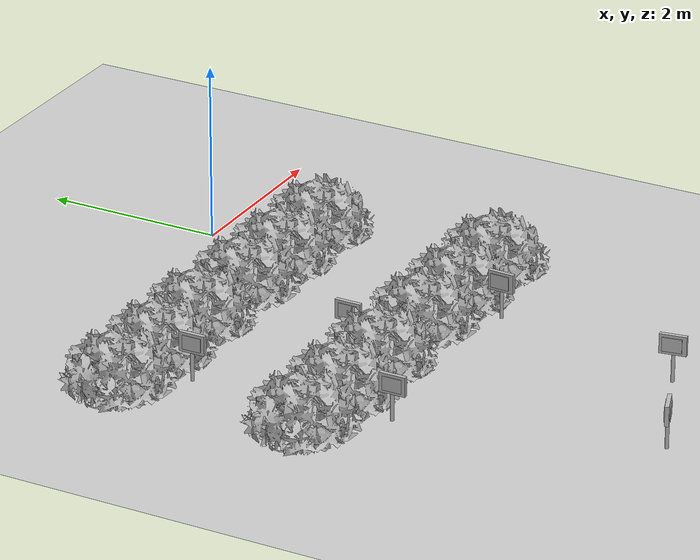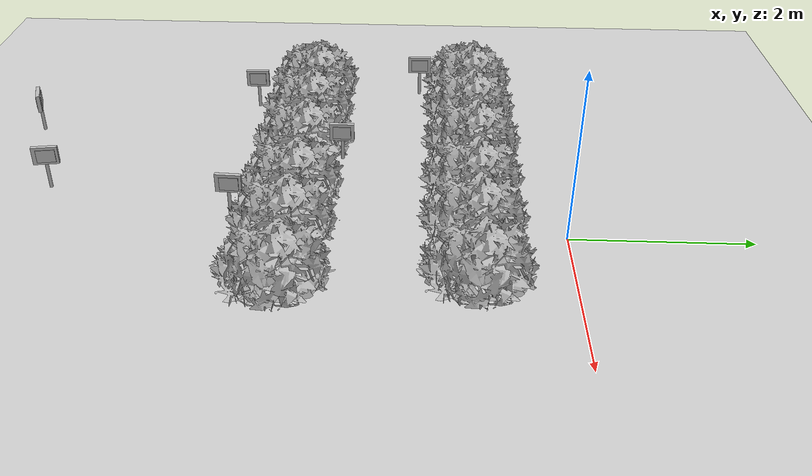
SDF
<sdf version="1.7">
 <world name="default">
  <model name="ground_plane">
   <static>1</static>
   <link name="link">
    <collision name="collision">
     <geometry><plane><normal>0 0 1</normal><size>100 100</size></plane></geometry>
     <surface>
      <contact><collide_bitmask>65535</collide_bitmask></contact>
      <friction><ode><mu>100</mu><mu2>50</mu2></ode></friction>
     </surface>
    </collision>
    <visual name="visual">
     <cast_shadows>0</cast_shadows>
     <geometry><plane><normal>0 0 1</normal><size>100 100</size></plane></geometry>
     <material>
      <script><uri>file://media/materials/scripts/gazebo.material</uri><name>Gazebo/Grey</name></script>
     </material>
    </visual>
   </link>
  </model>
  <model name="abbfre">
   <link name="link_0">
    <inertial>
     <mass>1</mass>
     <inertia>
      <ixx>0.166667</ixx>
      <ixy>0</ixy>
      <ixz>0</ixz>
      <iyy>0.166667</iyy>
      <iyz>0</iyz>
      <izz>0.166667</izz>
     </inertia>
    </inertial>
    <pose>0 0 -0 1.60917 -0 0</pose>
    <visual name="visual">
     <geometry><mesh><uri>model://abbfre/meshes/arbufres.obj</uri><scale>1 1 1</scale></mesh></geometry>
    </visual>
    <collision name="collision">
     <geometry><mesh><uri>model://abbfre/meshes/arbufres.obj</uri><scale>1 1 1</scale></mesh></geometry>
     <surface>
      <friction>
       <ode><mu>1</mu><mu2>1</mu2><fdir1>0 0 0</fdir1><slip1>0</slip1><slip2>0</slip2></ode>
       <torsional>
        <coefficient>1</coefficient>
        <patch_radius>0</patch_radius>
        <surface_radius>0</surface_radius>
        <use_patch_radius>1</use_patch_radius>
        <ode><slip>0</slip></ode>
       </torsional>
      </friction>
      <bounce><restitution_coefficient>0</restitution_coefficient><threshold>1e+06</threshold></bounce>
      <contact>
       <collide_without_contact>0</collide_without_contact>
       <collide_without_contact_bitmask>1</collide_without_contact_bitmask>
       <collide_bitmask>1</collide_bitmask>
       <ode>
        <soft_cfm>0</soft_cfm>
        <soft_erp>0.2</soft_erp>
        <kp>1e+13</kp>
        <kd>1</kd>
        <max_vel>0.01</max_vel>
        <min_depth>0</min_depth>
       </ode>
       <bullet>
        <split_impulse>1</split_impulse>
        <split_impulse_penetration_threshold>-0.01</split_impulse_penetration_threshold>
        <soft_cfm>0</soft_cfm>
        <soft_erp>0.2</soft_erp>
        <kp>1e+13</kp>
        <kd>1</kd>
       </bullet>
      </contact>
     </surface>
    </collision>
   </link>
   <static>1</static>
   <pose>-0.209599 -0.883769 0 0 -0 0</pose>
  </model>
  <model name="abbfre_4">
   <link name="link_0">
    <inertial>
     <mass>1</mass>
     <inertia>
      <ixx>0.166667</ixx>
      <ixy>0</ixy>
      <ixz>0</ixz>
      <iyy>0.166667</iyy>
      <iyz>0</iyz>
      <izz>0.166667</izz>
     </inertia>
    </inertial>
    <pose>0 0 -0 1.60917 -0 0</pose>
    <visual name="visual">
     <geometry><mesh><uri>model://abbfre/meshes/arbufres.obj</uri><scale>1 1 1</scale></mesh></geometry>
    </visual>
    <collision name="collision">
     <geometry><mesh><uri>model://abbfre/meshes/arbufres.obj</uri><scale>1 1 1</scale></mesh></geometry>
     <surface>
      <friction>
       <ode><mu>1</mu><mu2>1</mu2><fdir1>0 0 0</fdir1><slip1>0</slip1><slip2>0</slip2></ode>
       <torsional>
        <coefficient>1</coefficient>
        <patch_radius>0</patch_radius>
        <surface_radius>0</surface_radius>
        <use_patch_radius>1</use_patch_radius>
        <ode><slip>0</slip></ode>
       </torsional>
      </friction>
      <bounce><restitution_coefficient>0</restitution_coefficient><threshold>1e+06</threshold></bounce>
      <contact>
       <collide_without_contact>0</collide_without_contact>
       <collide_without_contact_bitmask>1</collide_without_contact_bitmask>
       <collide_bitmask>1</collide_bitmask>
       <ode>
        <soft_cfm>0</soft_cfm>
        <soft_erp>0.2</soft_erp>
        <kp>1e+13</kp>
        <kd>1</kd>
        <max_vel>0.01</max_vel>
        <min_depth>0</min_depth>
       </ode>
       <bullet>
        <split_impulse>1</split_impulse>
        <split_impulse_penetration_threshold>-0.01</split_impulse_penetration_threshold>
        <soft_cfm>0</soft_cfm>
        <soft_erp>0.2</soft_erp>
        <kp>1e+13</kp>
        <kd>1</kd>
       </bullet>
      </contact>
     </surface>
    </collision>
   </link>
   <static>1</static>
   <pose>-2.78374 -0.856745 0 0 -0 0</pose>
  </model>
  <model name="abbfre_9">
   <link name="link_0">
    <inertial>
     <mass>1</mass>
     <inertia>
      <ixx>0.166667</ixx>
      <ixy>0</ixy>
      <ixz>0</ixz>
      <iyy>0.166667</iyy>
      <iyz>0</iyz>
      <izz>0.166667</izz>
     </inertia>
    </inertial>
    <pose>0 0 -0 1.60917 -0 0</pose>
    <visual name="visual">
     <geometry><mesh><uri>model://abbfre/meshes/arbufres.obj</uri><scale>1 1 1</scale></mesh></geometry>
    </visual>
    <collision name="collision">
     <geometry><mesh><uri>model://abbfre/meshes/arbufres.obj</uri><scale>1 1 1</scale></mesh></geometry>
     <surface>
      <friction>
       <ode><mu>1</mu><mu2>1</mu2><fdir1>0 0 0</fdir1><slip1>0</slip1><slip2>0</slip2></ode>
       <torsional>
        <coefficient>1</coefficient>
        <patch_radius>0</patch_radius>
        <surface_radius>0</surface_radius>
        <use_patch_radius>1</use_patch_radius>
        <ode><slip>0</slip></ode>
       </torsional>
      </friction>
      <bounce><restitution_coefficient>0</restitution_coefficient><threshold>1e+06</threshold></bounce>
      <contact>
       <collide_without_contact>0</collide_without_contact>
       <collide_without_contact_bitmask>1</collide_without_contact_bitmask>
       <collide_bitmask>1</collide_bitmask>
       <ode>
        <soft_cfm>0</soft_cfm>
        <soft_erp>0.2</soft_erp>
        <kp>1e+13</kp>
        <kd>1</kd>
        <max_vel>0.01</max_vel>
        <min_depth>0</min_depth>
       </ode>
       <bullet>
        <split_impulse>1</split_impulse>
        <split_impulse_penetration_threshold>-0.01</split_impulse_penetration_threshold>
        <soft_cfm>0</soft_cfm>
        <soft_erp>0.2</soft_erp>
        <kp>1e+13</kp>
        <kd>1</kd>
       </bullet>
      </contact>
     </surface>
    </collision>
   </link>
   <static>1</static>
   <pose>-0.087861 -2.97501 0 0 -0 0</pose>
  </model>
  <model name="abbfre_10">
   <link name="link_0">
    <inertial>
     <mass>1</mass>
     <inertia>
      <ixx>0.166667</ixx>
      <ixy>0</ixy>
      <ixz>0</ixz>
      <iyy>0.166667</iyy>
      <iyz>0</iyz>
      <izz>0.166667</izz>
     </inertia>
    </inertial>
    <pose>0 0 -0 1.60917 -0 0</pose>
    <visual name="visual">
     <geometry><mesh><uri>model://abbfre/meshes/arbufres.obj</uri><scale>1 1 1</scale></mesh></geometry>
    </visual>
    <collision name="collision">
     <geometry><mesh><uri>model://abbfre/meshes/arbufres.obj</uri><scale>1 1 1</scale></mesh></geometry>
     <surface>
      <friction>
       <ode><mu>1</mu><mu2>1</mu2><fdir1>0 0 0</fdir1><slip1>0</slip1><slip2>0</slip2></ode>
       <torsional>
        <coefficient>1</coefficient>
        <patch_radius>0</patch_radius>
        <surface_radius>0</surface_radius>
        <use_patch_radius>1</use_patch_radius>
        <ode><slip>0</slip></ode>
       </torsional>
      </friction>
      <bounce><restitution_coefficient>0</restitution_coefficient><threshold>1e+06</threshold></bounce>
      <contact>
       <collide_without_contact>0</collide_without_contact>
       <collide_without_contact_bitmask>1</collide_without_contact_bitmask>
       <collide_bitmask>1</collide_bitmask>
       <ode>
        <soft_cfm>0</soft_cfm>
        <soft_erp>0.2</soft_erp>
        <kp>1e+13</kp>
        <kd>1</kd>
        <max_vel>0.01</max_vel>
        <min_depth>0</min_depth>
       </ode>
       <bullet>
        <split_impulse>1</split_impulse>
        <split_impulse_penetration_threshold>-0.01</split_impulse_penetration_threshold>
        <soft_cfm>0</soft_cfm>
        <soft_erp>0.2</soft_erp>
        <kp>1e+13</kp>
        <kd>1</kd>
       </bullet>
      </contact>
     </surface>
    </collision>
   </link>
   <static>1</static>
   <pose>-2.70737 -2.9693 0 0 -0 0</pose>
  </model>
  <model name="letrero_fresa">
   <link name="link_0">
    <inertial>
     <mass>0.00543151</mass>
     <inertia>
      <ixx>4.90351e-06</ixx>
      <ixy>0</ixy>
      <ixz>0</ixz>
      <iyy>4.90351e-06</iyy>
      <iyz>0</iyz>
      <izz>1.12837e-07</izz>
     </inertia>
    </inertial>
    <pose>0.002372 -0.000902 -0.178803 0 -0 0</pose>
    <visual name="visual">
     <geometry><cylinder><radius>0.0203836</radius><length>0.327243</length></cylinder></geometry>
     <material>
      <lighting>1</lighting>
      <script>
       <uri>model://letrero_fresa/madera/scripts</uri>
       <uri>model://letrero_fresa/madera/textures</uri>
       <name>textur/madera</name>
      </script>
      <shader type="pixel"/>
      <emissive>0 0 0 1</emissive>
     </material>
    </visual>
    <collision name="collision">
     <geometry><cylinder><radius>0.020384</radius><length>0.327243</length></cylinder></geometry>
     <surface>
      <friction>
       <ode><mu>1</mu><mu2>1</mu2><fdir1>0 0 0</fdir1><slip1>0</slip1><slip2>0</slip2></ode>
       <torsional>
        <coefficient>1</coefficient>
        <patch_radius>0</patch_radius>
        <surface_radius>0</surface_radius>
        <use_patch_radius>1</use_patch_radius>
        <ode><slip>0</slip></ode>
       </torsional>
      </friction>
      <bounce><restitution_coefficient>0</restitution_coefficient><threshold>1e+06</threshold></bounce>
      <contact>
       <collide_without_contact>0</collide_without_contact>
       <collide_without_contact_bitmask>1</collide_without_contact_bitmask>
       <collide_bitmask>1</collide_bitmask>
       <ode>
        <soft_cfm>0</soft_cfm>
        <soft_erp>0.2</soft_erp>
        <kp>1e+13</kp>
        <kd>1</kd>
        <max_vel>0.01</max_vel>
        <min_depth>0</min_depth>
       </ode>
       <bullet>
        <split_impulse>1</split_impulse>
        <split_impulse_penetration_threshold>-0.01</split_impulse_penetration_threshold>
        <soft_cfm>0</soft_cfm>
        <soft_erp>0.2</soft_erp>
        <kp>1e+13</kp>
        <kd>1</kd>
       </bullet>
      </contact>
     </surface>
    </collision>
   </link>
   <link name="link_1">
    <inertial>
     <mass>0.00299633</mass>
     <inertia>
      <ixx>1.27855e-05</ixx>
      <ixy>0</ixy>
      <ixz>0</ixz>
      <iyy>3.42923e-05</iyy>
      <iyz>0</iyz>
      <izz>2.25402e-05</izz>
     </inertia>
    </inertial>
    <pose>-0.001685 -0.003559 0.089666 0 -0 0</pose>
    <visual name="visual">
     <geometry><box><size>0.296988 0.04549 0.221665</size></box></geometry>
     <material>
      <lighting>1</lighting>
      <script>
       <uri>model://letrero_fresa/madera/scripts</uri>
       <uri>model://letrero_fresa/madera/textures</uri>
       <name>textur/madera</name>
      </script>
      <shader type="pixel"/>
      <emissive>0 0 0 1</emissive>
     </material>
    </visual>
    <collision name="collision">
     <geometry><box><size>0.296988 0.04549 0.221665</size></box></geometry>
     <surface>
      <friction>
       <ode><mu>1</mu><mu2>1</mu2><fdir1>0 0 0</fdir1><slip1>0</slip1><slip2>0</slip2></ode>
       <torsional>
        <coefficient>1</coefficient>
        <patch_radius>0</patch_radius>
        <surface_radius>0</surface_radius>
        <use_patch_radius>1</use_patch_radius>
        <ode><slip>0</slip></ode>
       </torsional>
      </friction>
      <bounce><restitution_coefficient>0</restitution_coefficient><threshold>1e+06</threshold></bounce>
      <contact>
       <collide_without_contact>0</collide_without_contact>
       <collide_without_contact_bitmask>1</collide_without_contact_bitmask>
       <collide_bitmask>1</collide_bitmask>
       <ode>
        <soft_cfm>0</soft_cfm>
        <soft_erp>0.2</soft_erp>
        <kp>1e+13</kp>
        <kd>1</kd>
        <max_vel>0.01</max_vel>
        <min_depth>0</min_depth>
       </ode>
       <bullet>
        <split_impulse>1</split_impulse>
        <split_impulse_penetration_threshold>-0.01</split_impulse_penetration_threshold>
        <soft_cfm>0</soft_cfm>
        <soft_erp>0.2</soft_erp>
        <kp>1e+13</kp>
        <kd>1</kd>
       </bullet>
      </contact>
     </surface>
    </collision>
   </link>
   <link name="link_2">
    <inertial>
     <mass>0.00219695</mass>
     <inertia>
      <ixx>5.34209e-06</ixx>
      <ixy>0</ixy>
      <ixz>0</ixz>
      <iyy>1.31531e-05</iyy>
      <iyz>0</iyz>
      <izz>9.31738e-06</izz>
     </inertia>
    </inertial>
    <pose>-0.001275 -0.005928 0.089136 0 -0 0</pose>
    <visual name="visual">
     <geometry><box><size>0.216284 0.06414 0.15832</size></box></geometry>
     <material>
      <lighting>1</lighting>
      <script>
       <uri>model://letrero_fresa/materials/scripts</uri>
       <uri>model://letrero_fresa/materials/textures</uri>
       <name>textur/difre</name>
      </script>
      <shader type="pixel"/>
      <emissive>0 0 0 1</emissive>
     </material>
    </visual>
    <collision name="collision">
     <geometry><box><size>0.216284 0.06414 0.15832</size></box></geometry>
     <surface>
      <friction>
       <ode><mu>1</mu><mu2>1</mu2><fdir1>0 0 0</fdir1><slip1>0</slip1><slip2>0</slip2></ode>
       <torsional>
        <coefficient>1</coefficient>
        <patch_radius>0</patch_radius>
        <surface_radius>0</surface_radius>
        <use_patch_radius>1</use_patch_radius>
        <ode><slip>0</slip></ode>
       </torsional>
      </friction>
      <bounce><restitution_coefficient>0</restitution_coefficient><threshold>1e+06</threshold></bounce>
      <contact>
       <collide_without_contact>0</collide_without_contact>
       <collide_without_contact_bitmask>1</collide_without_contact_bitmask>
       <collide_bitmask>1</collide_bitmask>
       <ode>
        <soft_cfm>0</soft_cfm>
        <soft_erp>0.2</soft_erp>
        <kp>1e+13</kp>
        <kd>1</kd>
        <max_vel>0.01</max_vel>
        <min_depth>0</min_depth>
       </ode>
       <bullet>
        <split_impulse>1</split_impulse>
        <split_impulse_penetration_threshold>-0.01</split_impulse_penetration_threshold>
        <soft_cfm>0</soft_cfm>
        <soft_erp>0.2</soft_erp>
        <kp>1e+13</kp>
        <kd>1</kd>
       </bullet>
      </contact>
     </surface>
    </collision>
   </link>
   <joint name="link_0_JOINT_1" type="fixed">
    <parent>link_0</parent>
    <child>link_1</child>
    <physics>
     <ode><limit><cfm>0</cfm><erp>0.2</erp></limit><suspension><cfm>0</cfm><erp>0.2</erp></suspension></ode>
    </physics>
   </joint>
   <joint name="link_0_JOINT_2" type="fixed">
    <parent>link_0</parent>
    <child>link_2</child>
    <physics>
     <ode><limit><cfm>0</cfm><erp>0.2</erp></limit><suspension><cfm>0</cfm><erp>0.2</erp></suspension></ode>
    </physics>
   </joint>
   <static>1</static>
   <pose>-3.241 -1.63282 0.406811 0 -0 1.573</pose>
  </model>
  <model name="letrero_insecto">
   <link name="link_0">
    <inertial>
     <mass>0.00543151</mass>
     <inertia>
      <ixx>4.90351e-06</ixx>
      <ixy>0</ixy>
      <ixz>0</ixz>
      <iyy>4.90351e-06</iyy>
      <iyz>0</iyz>
      <izz>1.12837e-07</izz>
     </inertia>
    </inertial>
    <pose>0.002372 -0.000902 -0.178803 0 -0 0</pose>
    <visual name="visual">
     <geometry><cylinder><radius>0.0203836</radius><length>0.327243</length></cylinder></geometry>
     <material>
      <lighting>1</lighting>
      <script>
       <uri>model://letrero_insecto/madera/scripts</uri>
       <uri>model://letrero_insecto/madera/textures</uri>
       <name>textur/madera</name>
      </script>
      <shader type="pixel"/>
      <emissive>0 0 0 1</emissive>
     </material>
    </visual>
    <collision name="collision">
     <geometry><cylinder><radius>0.020384</radius><length>0.327243</length></cylinder></geometry>
     <surface>
      <friction>
       <ode><mu>1</mu><mu2>1</mu2><fdir1>0 0 0</fdir1><slip1>0</slip1><slip2>0</slip2></ode>
       <torsional>
        <coefficient>1</coefficient>
        <patch_radius>0</patch_radius>
        <surface_radius>0</surface_radius>
        <use_patch_radius>1</use_patch_radius>
        <ode><slip>0</slip></ode>
       </torsional>
      </friction>
      <bounce><restitution_coefficient>0</restitution_coefficient><threshold>1e+06</threshold></bounce>
      <contact>
       <collide_without_contact>0</collide_without_contact>
       <collide_without_contact_bitmask>1</collide_without_contact_bitmask>
       <collide_bitmask>1</collide_bitmask>
       <ode>
        <soft_cfm>0</soft_cfm>
        <soft_erp>0.2</soft_erp>
        <kp>1e+13</kp>
        <kd>1</kd>
        <max_vel>0.01</max_vel>
        <min_depth>0</min_depth>
       </ode>
       <bullet>
        <split_impulse>1</split_impulse>
        <split_impulse_penetration_threshold>-0.01</split_impulse_penetration_threshold>
        <soft_cfm>0</soft_cfm>
        <soft_erp>0.2</soft_erp>
        <kp>1e+13</kp>
        <kd>1</kd>
       </bullet>
      </contact>
     </surface>
    </collision>
   </link>
   <link name="link_1">
    <inertial>
     <mass>0.00299633</mass>
     <inertia>
      <ixx>1.27855e-05</ixx>
      <ixy>0</ixy>
      <ixz>0</ixz>
      <iyy>3.42923e-05</iyy>
      <iyz>0</iyz>
      <izz>2.25402e-05</izz>
     </inertia>
    </inertial>
    <pose>-0.001685 -0.003559 0.089666 0 -0 0</pose>
    <visual name="visual">
     <geometry><box><size>0.296988 0.04549 0.221665</size></box></geometry>
     <material>
      <lighting>1</lighting>
      <script>
       <uri>model://letrero_insecto/madera/scripts</uri>
       <uri>model://letrero_insecto/madera/textures</uri>
       <name>textur/madera</name>
      </script>
      <shader type="pixel"/>
      <emissive>0 0 0 1</emissive>
     </material>
    </visual>
    <collision name="collision">
     <geometry><box><size>0.296988 0.04549 0.221665</size></box></geometry>
     <surface>
      <friction>
       <ode><mu>1</mu><mu2>1</mu2><fdir1>0 0 0</fdir1><slip1>0</slip1><slip2>0</slip2></ode>
       <torsional>
        <coefficient>1</coefficient>
        <patch_radius>0</patch_radius>
        <surface_radius>0</surface_radius>
        <use_patch_radius>1</use_patch_radius>
        <ode><slip>0</slip></ode>
       </torsional>
      </friction>
      <bounce><restitution_coefficient>0</restitution_coefficient><threshold>1e+06</threshold></bounce>
      <contact>
       <collide_without_contact>0</collide_without_contact>
       <collide_without_contact_bitmask>1</collide_without_contact_bitmask>
       <collide_bitmask>1</collide_bitmask>
       <ode>
        <soft_cfm>0</soft_cfm>
        <soft_erp>0.2</soft_erp>
        <kp>1e+13</kp>
        <kd>1</kd>
        <max_vel>0.01</max_vel>
        <min_depth>0</min_depth>
       </ode>
       <bullet>
        <split_impulse>1</split_impulse>
        <split_impulse_penetration_threshold>-0.01</split_impulse_penetration_threshold>
        <soft_cfm>0</soft_cfm>
        <soft_erp>0.2</soft_erp>
        <kp>1e+13</kp>
        <kd>1</kd>
       </bullet>
      </contact>
     </surface>
    </collision>
   </link>
   <link name="link_2">
    <inertial>
     <mass>0.00219695</mass>
     <inertia>
      <ixx>5.34209e-06</ixx>
      <ixy>0</ixy>
      <ixz>0</ixz>
      <iyy>1.31531e-05</iyy>
      <iyz>0</iyz>
      <izz>9.31738e-06</izz>
     </inertia>
    </inertial>
    <pose>-0.001275 -0.005928 0.089136 0 -0 0</pose>
    <visual name="visual">
     <geometry><box><size>0.216284 0.06414 0.15832</size></box></geometry>
     <material>
      <lighting>1</lighting>
      <script>
       <uri>model://letrero_insecto/materials/scripts</uri>
       <uri>model://letrero_insecto/materials/textures</uri>
       <name>textur/insec</name>
      </script>
      <shader type="pixel"/>
      <emissive>0 0 0 1</emissive>
     </material>
    </visual>
    <collision name="collision">
     <geometry><box><size>0.216284 0.06414 0.15832</size></box></geometry>
     <surface>
      <friction>
       <ode><mu>1</mu><mu2>1</mu2><fdir1>0 0 0</fdir1><slip1>0</slip1><slip2>0</slip2></ode>
       <torsional>
        <coefficient>1</coefficient>
        <patch_radius>0</patch_radius>
        <surface_radius>0</surface_radius>
        <use_patch_radius>1</use_patch_radius>
        <ode><slip>0</slip></ode>
       </torsional>
      </friction>
      <bounce><restitution_coefficient>0</restitution_coefficient><threshold>1e+06</threshold></bounce>
      <contact>
       <collide_without_contact>0</collide_without_contact>
       <collide_without_contact_bitmask>1</collide_without_contact_bitmask>
       <collide_bitmask>1</collide_bitmask>
       <ode>
        <soft_cfm>0</soft_cfm>
        <soft_erp>0.2</soft_erp>
        <kp>1e+13</kp>
        <kd>1</kd>
        <max_vel>0.01</max_vel>
        <min_depth>0</min_depth>
       </ode>
       <bullet>
        <split_impulse>1</split_impulse>
        <split_impulse_penetration_threshold>-0.01</split_impulse_penetration_threshold>
        <soft_cfm>0</soft_cfm>
        <soft_erp>0.2</soft_erp>
        <kp>1e+13</kp>
        <kd>1</kd>
       </bullet>
      </contact>
     </surface>
    </collision>
   </link>
   <joint name="link_0_JOINT_1" type="fixed">
    <parent>link_0</parent>
    <child>link_1</child>
    <physics>
     <ode><limit><cfm>0</cfm><erp>0.2</erp></limit><suspension><cfm>0</cfm><erp>0.2</erp></suspension></ode>
    </physics>
   </joint>
   <joint name="link_0_JOINT_2" type="fixed">
    <parent>link_0</parent>
    <child>link_2</child>
    <physics>
     <ode><limit><cfm>0</cfm><erp>0.2</erp></limit><suspension><cfm>0</cfm><erp>0.2</erp></suspension></ode>
    </physics>
   </joint>
   <static>1</static>
   <pose>-1.58816 -2.55615 0.27684 0 -0 1.56189</pose>
  </model>
  <model name="letrero_chocho_8">
   <link name="link_0">
    <inertial>
     <mass>0.0543151</mass>
     <inertia>
      <ixx>4.90351e-06</ixx>
      <ixy>0</ixy>
      <ixz>0</ixz>
      <iyy>4.90351e-06</iyy>
      <iyz>0</iyz>
      <izz>1.12837e-07</izz>
     </inertia>
    </inertial>
    <pose>0.002515 0.005109 0.153562 0 -0 0</pose>
    <visual name="visual">
     <geometry><cylinder><radius>0.0203836</radius><length>0.327243</length></cylinder></geometry>
     <material>
      <lighting>1</lighting>
      <script>
       <uri>model://letrero_chocho/madera/scripts</uri>
       <uri>model://letrero_chocho/madera/textures</uri>
       <name>textur/madera</name>
      </script>
      <shader type="pixel"/>
      <emissive>0 0 0 1</emissive>
     </material>
    </visual>
    <collision name="collision">
     <geometry><cylinder><radius>0.020384</radius><length>0.327243</length></cylinder></geometry>
     <surface>
      <friction>
       <ode><mu>1</mu><mu2>1</mu2><fdir1>0 0 0</fdir1><slip1>0</slip1><slip2>0</slip2></ode>
       <torsional>
        <coefficient>1</coefficient>
        <patch_radius>0</patch_radius>
        <surface_radius>0</surface_radius>
        <use_patch_radius>1</use_patch_radius>
        <ode><slip>0</slip></ode>
       </torsional>
      </friction>
      <bounce><restitution_coefficient>0</restitution_coefficient><threshold>1e+06</threshold></bounce>
      <contact>
       <collide_without_contact>0</collide_without_contact>
       <collide_without_contact_bitmask>1</collide_without_contact_bitmask>
       <collide_bitmask>1</collide_bitmask>
       <ode>
        <soft_cfm>0</soft_cfm>
        <soft_erp>0.2</soft_erp>
        <kp>1e+13</kp>
        <kd>1</kd>
        <max_vel>0.01</max_vel>
        <min_depth>0</min_depth>
       </ode>
       <bullet>
        <split_impulse>1</split_impulse>
        <split_impulse_penetration_threshold>-0.01</split_impulse_penetration_threshold>
        <soft_cfm>0</soft_cfm>
        <soft_erp>0.2</soft_erp>
        <kp>1e+13</kp>
        <kd>1</kd>
       </bullet>
      </contact>
     </surface>
    </collision>
   </link>
   <link name="link_1">
    <inertial>
     <mass>0.00299633</mass>
     <inertia>
      <ixx>1.27855e-05</ixx>
      <ixy>0</ixy>
      <ixz>0</ixz>
      <iyy>3.42923e-05</iyy>
      <iyz>0</iyz>
      <izz>2.25402e-05</izz>
     </inertia>
    </inertial>
    <pose>-0.001542 0.002452 0.422031 0 -0 0</pose>
    <visual name="visual">
     <geometry><box><size>0.296988 0.04549 0.221665</size></box></geometry>
     <material>
      <lighting>1</lighting>
      <script>
       <uri>model://letrero_chocho/madera/scripts</uri>
       <uri>model://letrero_chocho/madera/textures</uri>
       <name>textur/madera</name>
      </script>
      <shader type="pixel"/>
      <emissive>0 0 0 1</emissive>
     </material>
    </visual>
    <collision name="collision">
     <geometry><box><size>0.296988 0.04549 0.221665</size></box></geometry>
     <surface>
      <friction>
       <ode><mu>1</mu><mu2>1</mu2><fdir1>0 0 0</fdir1><slip1>0</slip1><slip2>0</slip2></ode>
       <torsional>
        <coefficient>1</coefficient>
        <patch_radius>0</patch_radius>
        <surface_radius>0</surface_radius>
        <use_patch_radius>1</use_patch_radius>
        <ode><slip>0</slip></ode>
       </torsional>
      </friction>
      <bounce><restitution_coefficient>0</restitution_coefficient><threshold>1e+06</threshold></bounce>
      <contact>
       <collide_without_contact>0</collide_without_contact>
       <collide_without_contact_bitmask>1</collide_without_contact_bitmask>
       <collide_bitmask>1</collide_bitmask>
       <ode>
        <soft_cfm>0</soft_cfm>
        <soft_erp>0.2</soft_erp>
        <kp>1e+13</kp>
        <kd>1</kd>
        <max_vel>0.01</max_vel>
        <min_depth>0</min_depth>
       </ode>
       <bullet>
        <split_impulse>1</split_impulse>
        <split_impulse_penetration_threshold>-0.01</split_impulse_penetration_threshold>
        <soft_cfm>0</soft_cfm>
        <soft_erp>0.2</soft_erp>
        <kp>1e+13</kp>
        <kd>1</kd>
       </bullet>
      </contact>
     </surface>
    </collision>
   </link>
   <link name="link_2">
    <inertial>
     <mass>0.00173577</mass>
     <inertia>
      <ixx>4.23206e-06</ixx>
      <ixy>0</ixy>
      <ixz>0</ixz>
      <iyy>1.03921e-05</iyy>
      <iyz>0</iyz>
      <izz>7.37287e-06</izz>
     </inertia>
    </inertial>
    <pose>-0.010225 0.002657 0.421501 0 -0 0</pose>
    <visual name="visual">
     <geometry><box><size>0.216284 0.064749 0.15832</size></box></geometry>
     <material>
      <lighting>1</lighting>
      <script>
       <uri>model://letrero_chocho/materials/scripts</uri>
       <uri>model://letrero_chocho/materials/textures</uri>
       <name>textur/cho</name>
      </script>
      <shader type="pixel"/>
      <emissive>0 0 0 1</emissive>
     </material>
    </visual>
    <collision name="collision">
     <geometry><box><size>0.216284 0.064749 0.15832</size></box></geometry>
     <surface>
      <friction>
       <ode><mu>1</mu><mu2>1</mu2><fdir1>0 0 0</fdir1><slip1>0</slip1><slip2>0</slip2></ode>
       <torsional>
        <coefficient>1</coefficient>
        <patch_radius>0</patch_radius>
        <surface_radius>0</surface_radius>
        <use_patch_radius>1</use_patch_radius>
        <ode><slip>0</slip></ode>
       </torsional>
      </friction>
      <bounce><restitution_coefficient>0</restitution_coefficient><threshold>1e+06</threshold></bounce>
      <contact>
       <collide_without_contact>0</collide_without_contact>
       <collide_without_contact_bitmask>1</collide_without_contact_bitmask>
       <collide_bitmask>1</collide_bitmask>
       <ode>
        <soft_cfm>0</soft_cfm>
        <soft_erp>0.2</soft_erp>
        <kp>1e+13</kp>
        <kd>1</kd>
        <max_vel>0.01</max_vel>
        <min_depth>0</min_depth>
       </ode>
       <bullet>
        <split_impulse>1</split_impulse>
        <split_impulse_penetration_threshold>-0.01</split_impulse_penetration_threshold>
        <soft_cfm>0</soft_cfm>
        <soft_erp>0.2</soft_erp>
        <kp>1e+13</kp>
        <kd>1</kd>
       </bullet>
      </contact>
     </surface>
    </collision>
   </link>
   <joint name="link_0_JOINT_1" type="fixed">
    <parent>link_0</parent>
    <child>link_1</child>
    <physics>
     <ode><limit><cfm>0</cfm><erp>0.2</erp></limit><suspension><cfm>0</cfm><erp>0.2</erp></suspension></ode>
    </physics>
   </joint>
   <joint name="link_0_JOINT_2" type="fixed">
    <parent>link_0</parent>
    <child>link_2</child>
    <physics>
     <ode><limit><cfm>0</cfm><erp>0.2</erp></limit><suspension><cfm>0</cfm><erp>0.2</erp></suspension></ode>
    </physics>
   </joint>
   <static>1</static>
   <pose>-0.786879 -5.92165 0 0 0 -1.4138</pose>
  </model>
  <model name="letrero_riego_II_7">
   <link name="link_0">
    <inertial>
     <mass>0.0543151</mass>
     <inertia>
      <ixx>4.90351e-06</ixx>
      <ixy>0</ixy>
      <ixz>0</ixz>
      <iyy>4.90351e-06</iyy>
      <iyz>0</iyz>
      <izz>1.12837e-07</izz>
     </inertia>
    </inertial>
    <pose>0.002515 0.005109 0.153562 0 -0 0</pose>
    <visual name="visual">
     <geometry><cylinder><radius>0.0203836</radius><length>0.327243</length></cylinder></geometry>
     <material>
      <lighting>1</lighting>
      <script>
       <uri>model://letrero_riego_II/madera/scripts</uri>
       <uri>model://letrero_riego_II/madera/textures</uri>
       <name>textur/madera</name>
      </script>
      <shader type="pixel"/>
      <emissive>0 0 0 1</emissive>
     </material>
    </visual>
    <collision name="collision">
     <geometry><cylinder><radius>0.020384</radius><length>0.327243</length></cylinder></geometry>
     <surface>
      <friction>
       <ode><mu>1</mu><mu2>1</mu2><fdir1>0 0 0</fdir1><slip1>0</slip1><slip2>0</slip2></ode>
       <torsional>
        <coefficient>1</coefficient>
        <patch_radius>0</patch_radius>
        <surface_radius>0</surface_radius>
        <use_patch_radius>1</use_patch_radius>
        <ode><slip>0</slip></ode>
       </torsional>
      </friction>
      <bounce><restitution_coefficient>0</restitution_coefficient><threshold>1e+06</threshold></bounce>
      <contact>
       <collide_without_contact>0</collide_without_contact>
       <collide_without_contact_bitmask>1</collide_without_contact_bitmask>
       <collide_bitmask>1</collide_bitmask>
       <ode>
        <soft_cfm>0</soft_cfm>
        <soft_erp>0.2</soft_erp>
        <kp>1e+13</kp>
        <kd>1</kd>
        <max_vel>0.01</max_vel>
        <min_depth>0</min_depth>
       </ode>
       <bullet>
        <split_impulse>1</split_impulse>
        <split_impulse_penetration_threshold>-0.01</split_impulse_penetration_threshold>
        <soft_cfm>0</soft_cfm>
        <soft_erp>0.2</soft_erp>
        <kp>1e+13</kp>
        <kd>1</kd>
       </bullet>
      </contact>
     </surface>
    </collision>
   </link>
   <link name="link_1">
    <inertial>
     <mass>0.00299633</mass>
     <inertia>
      <ixx>1.27855e-05</ixx>
      <ixy>0</ixy>
      <ixz>0</ixz>
      <iyy>3.42923e-05</iyy>
      <iyz>0</iyz>
      <izz>2.25402e-05</izz>
     </inertia>
    </inertial>
    <pose>-0.001542 0.002452 0.422031 0 -0 0</pose>
    <visual name="visual">
     <geometry><box><size>0.296988 0.04549 0.221665</size></box></geometry>
     <material>
      <lighting>1</lighting>
      <script>
       <uri>model://letrero_riego_II/madera/scripts</uri>
       <uri>model://letrero_riego_II/madera/textures</uri>
       <name>textur/madera</name>
      </script>
      <shader type="pixel"/>
      <emissive>0 0 0 1</emissive>
     </material>
    </visual>
    <collision name="collision">
     <geometry><box><size>0.296988 0.04549 0.221665</size></box></geometry>
     <surface>
      <friction>
       <ode><mu>1</mu><mu2>1</mu2><fdir1>0 0 0</fdir1><slip1>0</slip1><slip2>0</slip2></ode>
       <torsional>
        <coefficient>1</coefficient>
        <patch_radius>0</patch_radius>
        <surface_radius>0</surface_radius>
        <use_patch_radius>1</use_patch_radius>
        <ode><slip>0</slip></ode>
       </torsional>
      </friction>
      <bounce><restitution_coefficient>0</restitution_coefficient><threshold>1e+06</threshold></bounce>
      <contact>
       <collide_without_contact>0</collide_without_contact>
       <collide_without_contact_bitmask>1</collide_without_contact_bitmask>
       <collide_bitmask>1</collide_bitmask>
       <ode>
        <soft_cfm>0</soft_cfm>
        <soft_erp>0.2</soft_erp>
        <kp>1e+13</kp>
        <kd>1</kd>
        <max_vel>0.01</max_vel>
        <min_depth>0</min_depth>
       </ode>
       <bullet>
        <split_impulse>1</split_impulse>
        <split_impulse_penetration_threshold>-0.01</split_impulse_penetration_threshold>
        <soft_cfm>0</soft_cfm>
        <soft_erp>0.2</soft_erp>
        <kp>1e+13</kp>
        <kd>1</kd>
       </bullet>
      </contact>
     </surface>
    </collision>
   </link>
   <link name="link_2">
    <inertial>
     <mass>0.00173577</mass>
     <inertia>
      <ixx>4.23206e-06</ixx>
      <ixy>0</ixy>
      <ixz>0</ixz>
      <iyy>1.03921e-05</iyy>
      <iyz>0</iyz>
      <izz>7.37287e-06</izz>
     </inertia>
    </inertial>
    <pose>-0.010225 0.002657 0.421501 0 -0 0</pose>
    <visual name="visual">
     <geometry><box><size>0.216284 0.064749 0.15832</size></box></geometry>
     <material>
      <lighting>1</lighting>
      <script>
       <uri>model://letrero_riego_II/materials/scripts</uri>
       <uri>model://letrero_riego_II/materials/textures</uri>
       <name>textur/sisrie</name>
      </script>
      <shader type="pixel"/>
      <emissive>0 0 0 1</emissive>
     </material>
    </visual>
    <collision name="collision">
     <geometry><box><size>0.216284 0.064749 0.15832</size></box></geometry>
     <surface>
      <friction>
       <ode><mu>1</mu><mu2>1</mu2><fdir1>0 0 0</fdir1><slip1>0</slip1><slip2>0</slip2></ode>
       <torsional>
        <coefficient>1</coefficient>
        <patch_radius>0</patch_radius>
        <surface_radius>0</surface_radius>
        <use_patch_radius>1</use_patch_radius>
        <ode><slip>0</slip></ode>
       </torsional>
      </friction>
      <bounce><restitution_coefficient>0</restitution_coefficient><threshold>1e+06</threshold></bounce>
      <contact>
       <collide_without_contact>0</collide_without_contact>
       <collide_without_contact_bitmask>1</collide_without_contact_bitmask>
       <collide_bitmask>1</collide_bitmask>
       <ode>
        <soft_cfm>0</soft_cfm>
        <soft_erp>0.2</soft_erp>
        <kp>1e+13</kp>
        <kd>1</kd>
        <max_vel>0.01</max_vel>
        <min_depth>0</min_depth>
       </ode>
       <bullet>
        <split_impulse>1</split_impulse>
        <split_impulse_penetration_threshold>-0.01</split_impulse_penetration_threshold>
        <soft_cfm>0</soft_cfm>
        <soft_erp>0.2</soft_erp>
        <kp>1e+13</kp>
        <kd>1</kd>
       </bullet>
      </contact>
     </surface>
    </collision>
   </link>
   <joint name="link_0_JOINT_1" type="fixed">
    <parent>link_0</parent>
    <child>link_1</child>
    <physics>
     <ode><limit><cfm>0</cfm><erp>0.2</erp></limit><suspension><cfm>0</cfm><erp>0.2</erp></suspension></ode>
    </physics>
   </joint>
   <joint name="link_0_JOINT_2" type="fixed">
    <parent>link_0</parent>
    <child>link_2</child>
    <physics>
     <ode><limit><cfm>0</cfm><erp>0.2</erp></limit><suspension><cfm>0</cfm><erp>0.2</erp></suspension></ode>
    </physics>
   </joint>
   <static>1</static>
   <pose>-2.14115 -6.48982 0 0 -0 0.336304</pose>
  </model>
  <model name="letrero_pajaro_6">
   <link name="link_0">
    <inertial>
     <mass>0.0543151</mass>
     <inertia>
      <ixx>4.90351e-06</ixx>
      <ixy>0</ixy>
      <ixz>0</ixz>
      <iyy>4.90351e-06</iyy>
      <iyz>0</iyz>
      <izz>1.12837e-07</izz>
     </inertia>
    </inertial>
    <pose>0.002515 0.005109 0.153562 0 -0 0</pose>
    <visual name="visual">
     <geometry><cylinder><radius>0.0203836</radius><length>0.327243</length></cylinder></geometry>
     <material>
      <lighting>1</lighting>
      <script>
       <uri>model://letrero_pajaro/madera/scripts</uri>
       <uri>model://letrero_pajaro/madera/textures</uri>
       <name>textur/madera</name>
      </script>
      <shader type="pixel"/>
      <emissive>0 0 0 1</emissive>
     </material>
    </visual>
    <collision name="collision">
     <geometry><cylinder><radius>0.020384</radius><length>0.327243</length></cylinder></geometry>
     <surface>
      <friction>
       <ode><mu>1</mu><mu2>1</mu2><fdir1>0 0 0</fdir1><slip1>0</slip1><slip2>0</slip2></ode>
       <torsional>
        <coefficient>1</coefficient>
        <patch_radius>0</patch_radius>
        <surface_radius>0</surface_radius>
        <use_patch_radius>1</use_patch_radius>
        <ode><slip>0</slip></ode>
       </torsional>
      </friction>
      <bounce><restitution_coefficient>0</restitution_coefficient><threshold>1e+06</threshold></bounce>
      <contact>
       <collide_without_contact>0</collide_without_contact>
       <collide_without_contact_bitmask>1</collide_without_contact_bitmask>
       <collide_bitmask>1</collide_bitmask>
       <ode>
        <soft_cfm>0</soft_cfm>
        <soft_erp>0.2</soft_erp>
        <kp>1e+13</kp>
        <kd>1</kd>
        <max_vel>0.01</max_vel>
        <min_depth>0</min_depth>
       </ode>
       <bullet>
        <split_impulse>1</split_impulse>
        <split_impulse_penetration_threshold>-0.01</split_impulse_penetration_threshold>
        <soft_cfm>0</soft_cfm>
        <soft_erp>0.2</soft_erp>
        <kp>1e+13</kp>
        <kd>1</kd>
       </bullet>
      </contact>
     </surface>
    </collision>
   </link>
   <link name="link_1">
    <inertial>
     <mass>0.00299633</mass>
     <inertia>
      <ixx>1.27855e-05</ixx>
      <ixy>0</ixy>
      <ixz>0</ixz>
      <iyy>3.42923e-05</iyy>
      <iyz>0</iyz>
      <izz>2.25402e-05</izz>
     </inertia>
    </inertial>
    <pose>-0.001542 0.002452 0.422031 0 -0 0</pose>
    <visual name="visual">
     <geometry><box><size>0.296988 0.04549 0.221665</size></box></geometry>
     <material>
      <lighting>1</lighting>
      <script>
       <uri>model://letrero_pajaro/madera/scripts</uri>
       <uri>model://letrero_pajaro/madera/textures</uri>
       <name>textur/madera</name>
      </script>
      <shader type="pixel"/>
      <emissive>0 0 0 1</emissive>
     </material>
    </visual>
    <collision name="collision">
     <geometry><box><size>0.296988 0.04549 0.221665</size></box></geometry>
     <surface>
      <friction>
       <ode><mu>1</mu><mu2>1</mu2><fdir1>0 0 0</fdir1><slip1>0</slip1><slip2>0</slip2></ode>
       <torsional>
        <coefficient>1</coefficient>
        <patch_radius>0</patch_radius>
        <surface_radius>0</surface_radius>
        <use_patch_radius>1</use_patch_radius>
        <ode><slip>0</slip></ode>
       </torsional>
      </friction>
      <bounce><restitution_coefficient>0</restitution_coefficient><threshold>1e+06</threshold></bounce>
      <contact>
       <collide_without_contact>0</collide_without_contact>
       <collide_without_contact_bitmask>1</collide_without_contact_bitmask>
       <collide_bitmask>1</collide_bitmask>
       <ode>
        <soft_cfm>0</soft_cfm>
        <soft_erp>0.2</soft_erp>
        <kp>1e+13</kp>
        <kd>1</kd>
        <max_vel>0.01</max_vel>
        <min_depth>0</min_depth>
       </ode>
       <bullet>
        <split_impulse>1</split_impulse>
        <split_impulse_penetration_threshold>-0.01</split_impulse_penetration_threshold>
        <soft_cfm>0</soft_cfm>
        <soft_erp>0.2</soft_erp>
        <kp>1e+13</kp>
        <kd>1</kd>
       </bullet>
      </contact>
     </surface>
    </collision>
   </link>
   <link name="link_2">
    <inertial>
     <mass>0.00173577</mass>
     <inertia>
      <ixx>4.23206e-06</ixx>
      <ixy>0</ixy>
      <ixz>0</ixz>
      <iyy>1.03921e-05</iyy>
      <iyz>0</iyz>
      <izz>7.37287e-06</izz>
     </inertia>
    </inertial>
    <pose>-0.010225 0.002657 0.421501 0 -0 0</pose>
    <visual name="visual">
     <geometry><box><size>0.216284 0.064749 0.15832</size></box></geometry>
     <material>
      <lighting>1</lighting>
      <script>
       <uri>model://letrero_pajaro/materials/scripts</uri>
       <uri>model://letrero_pajaro/materials/textures</uri>
       <name>textur/paj</name>
      </script>
      <shader type="pixel"/>
      <emissive>0 0 0 1</emissive>
     </material>
    </visual>
    <collision name="collision">
     <geometry><box><size>0.216284 0.064749 0.15832</size></box></geometry>
     <surface>
      <friction>
       <ode><mu>1</mu><mu2>1</mu2><fdir1>0 0 0</fdir1><slip1>0</slip1><slip2>0</slip2></ode>
       <torsional>
        <coefficient>1</coefficient>
        <patch_radius>0</patch_radius>
        <surface_radius>0</surface_radius>
        <use_patch_radius>1</use_patch_radius>
        <ode><slip>0</slip></ode>
       </torsional>
      </friction>
      <bounce><restitution_coefficient>0</restitution_coefficient><threshold>1e+06</threshold></bounce>
      <contact>
       <collide_without_contact>0</collide_without_contact>
       <collide_without_contact_bitmask>1</collide_without_contact_bitmask>
       <collide_bitmask>1</collide_bitmask>
       <ode>
        <soft_cfm>0</soft_cfm>
        <soft_erp>0.2</soft_erp>
        <kp>1e+13</kp>
        <kd>1</kd>
        <max_vel>0.01</max_vel>
        <min_depth>0</min_depth>
       </ode>
       <bullet>
        <split_impulse>1</split_impulse>
        <split_impulse_penetration_threshold>-0.01</split_impulse_penetration_threshold>
        <soft_cfm>0</soft_cfm>
        <soft_erp>0.2</soft_erp>
        <kp>1e+13</kp>
        <kd>1</kd>
       </bullet>
      </contact>
     </surface>
    </collision>
   </link>
   <joint name="link_0_JOINT_1" type="fixed">
    <parent>link_0</parent>
    <child>link_1</child>
    <physics>
     <ode><limit><cfm>0</cfm><erp>0.2</erp></limit><suspension><cfm>0</cfm><erp>0.2</erp></suspension></ode>
    </physics>
   </joint>
   <joint name="link_0_JOINT_2" type="fixed">
    <parent>link_0</parent>
    <child>link_2</child>
    <physics>
     <ode><limit><cfm>0</cfm><erp>0.2</erp></limit><suspension><cfm>0</cfm><erp>0.2</erp></suspension></ode>
    </physics>
   </joint>
   <static>1</static>
   <pose>-0.302174 -3.70495 0 0 0 -1.62358</pose>
  </model>
  <model name="letrero_fresa_6">
   <link name="link_0">
    <inertial>
     <mass>0.00543151</mass>
     <inertia>
      <ixx>4.90351e-06</ixx>
      <ixy>0</ixy>
      <ixz>0</ixz>
      <iyy>4.90351e-06</iyy>
      <iyz>0</iyz>
      <izz>1.12837e-07</izz>
     </inertia>
    </inertial>
    <pose>0.002372 -0.000902 -0.178803 0 -0 0</pose>
    <visual name="visual">
     <geometry><cylinder><radius>0.0203836</radius><length>0.327243</length></cylinder></geometry>
     <material>
      <lighting>1</lighting>
      <script>
       <uri>model://letrero_fresa/madera/scripts</uri>
       <uri>model://letrero_fresa/madera/textures</uri>
       <name>textur/madera</name>
      </script>
      <shader type="pixel"/>
      <emissive>0 0 0 1</emissive>
     </material>
    </visual>
    <collision name="collision">
     <geometry><cylinder><radius>0.020384</radius><length>0.327243</length></cylinder></geometry>
     <surface>
      <friction>
       <ode><mu>1</mu><mu2>1</mu2><fdir1>0 0 0</fdir1><slip1>0</slip1><slip2>0</slip2></ode>
       <torsional>
        <coefficient>1</coefficient>
        <patch_radius>0</patch_radius>
        <surface_radius>0</surface_radius>
        <use_patch_radius>1</use_patch_radius>
        <ode><slip>0</slip></ode>
       </torsional>
      </friction>
      <bounce><restitution_coefficient>0</restitution_coefficient><threshold>1e+06</threshold></bounce>
      <contact>
       <collide_without_contact>0</collide_without_contact>
       <collide_without_contact_bitmask>1</collide_without_contact_bitmask>
       <collide_bitmask>1</collide_bitmask>
       <ode>
        <soft_cfm>0</soft_cfm>
        <soft_erp>0.2</soft_erp>
        <kp>1e+13</kp>
        <kd>1</kd>
        <max_vel>0.01</max_vel>
        <min_depth>0</min_depth>
       </ode>
       <bullet>
        <split_impulse>1</split_impulse>
        <split_impulse_penetration_threshold>-0.01</split_impulse_penetration_threshold>
        <soft_cfm>0</soft_cfm>
        <soft_erp>0.2</soft_erp>
        <kp>1e+13</kp>
        <kd>1</kd>
       </bullet>
      </contact>
     </surface>
    </collision>
   </link>
   <link name="link_1">
    <inertial>
     <mass>0.00299633</mass>
     <inertia>
      <ixx>1.27855e-05</ixx>
      <ixy>0</ixy>
      <ixz>0</ixz>
      <iyy>3.42923e-05</iyy>
      <iyz>0</iyz>
      <izz>2.25402e-05</izz>
     </inertia>
    </inertial>
    <pose>-0.001685 -0.003559 0.089666 0 -0 0</pose>
    <visual name="visual">
     <geometry><box><size>0.296988 0.04549 0.221665</size></box></geometry>
     <material>
      <lighting>1</lighting>
      <script>
       <uri>model://letrero_fresa/madera/scripts</uri>
       <uri>model://letrero_fresa/madera/textures</uri>
       <name>textur/madera</name>
      </script>
      <shader type="pixel"/>
      <emissive>0 0 0 1</emissive>
     </material>
    </visual>
    <collision name="collision">
     <geometry><box><size>0.296988 0.04549 0.221665</size></box></geometry>
     <surface>
      <friction>
       <ode><mu>1</mu><mu2>1</mu2><fdir1>0 0 0</fdir1><slip1>0</slip1><slip2>0</slip2></ode>
       <torsional>
        <coefficient>1</coefficient>
        <patch_radius>0</patch_radius>
        <surface_radius>0</surface_radius>
        <use_patch_radius>1</use_patch_radius>
        <ode><slip>0</slip></ode>
       </torsional>
      </friction>
      <bounce><restitution_coefficient>0</restitution_coefficient><threshold>1e+06</threshold></bounce>
      <contact>
       <collide_without_contact>0</collide_without_contact>
       <collide_without_contact_bitmask>1</collide_without_contact_bitmask>
       <collide_bitmask>1</collide_bitmask>
       <ode>
        <soft_cfm>0</soft_cfm>
        <soft_erp>0.2</soft_erp>
        <kp>1e+13</kp>
        <kd>1</kd>
        <max_vel>0.01</max_vel>
        <min_depth>0</min_depth>
       </ode>
       <bullet>
        <split_impulse>1</split_impulse>
        <split_impulse_penetration_threshold>-0.01</split_impulse_penetration_threshold>
        <soft_cfm>0</soft_cfm>
        <soft_erp>0.2</soft_erp>
        <kp>1e+13</kp>
        <kd>1</kd>
       </bullet>
      </contact>
     </surface>
    </collision>
   </link>
   <link name="link_2">
    <inertial>
     <mass>0.00219695</mass>
     <inertia>
      <ixx>5.34209e-06</ixx>
      <ixy>0</ixy>
      <ixz>0</ixz>
      <iyy>1.31531e-05</iyy>
      <iyz>0</iyz>
      <izz>9.31738e-06</izz>
     </inertia>
    </inertial>
    <pose>-0.001275 -0.005928 0.089136 0 -0 0</pose>
    <visual name="visual">
     <geometry><box><size>0.216284 0.06414 0.15832</size></box></geometry>
     <material>
      <lighting>1</lighting>
      <script>
       <uri>model://letrero_fresa/materials/scripts</uri>
       <uri>model://letrero_fresa/materials/textures</uri>
       <name>textur/difre</name>
      </script>
      <shader type="pixel"/>
      <emissive>0 0 0 1</emissive>
     </material>
    </visual>
    <collision name="collision">
     <geometry><box><size>0.216284 0.06414 0.15832</size></box></geometry>
     <surface>
      <friction>
       <ode><mu>1</mu><mu2>1</mu2><fdir1>0 0 0</fdir1><slip1>0</slip1><slip2>0</slip2></ode>
       <torsional>
        <coefficient>1</coefficient>
        <patch_radius>0</patch_radius>
        <surface_radius>0</surface_radius>
        <use_patch_radius>1</use_patch_radius>
        <ode><slip>0</slip></ode>
       </torsional>
      </friction>
      <bounce><restitution_coefficient>0</restitution_coefficient><threshold>1e+06</threshold></bounce>
      <contact>
       <collide_without_contact>0</collide_without_contact>
       <collide_without_contact_bitmask>1</collide_without_contact_bitmask>
       <collide_bitmask>1</collide_bitmask>
       <ode>
        <soft_cfm>0</soft_cfm>
        <soft_erp>0.2</soft_erp>
        <kp>1e+13</kp>
        <kd>1</kd>
        <max_vel>0.01</max_vel>
        <min_depth>0</min_depth>
       </ode>
       <bullet>
        <split_impulse>1</split_impulse>
        <split_impulse_penetration_threshold>-0.01</split_impulse_penetration_threshold>
        <soft_cfm>0</soft_cfm>
        <soft_erp>0.2</soft_erp>
        <kp>1e+13</kp>
        <kd>1</kd>
       </bullet>
      </contact>
     </surface>
    </collision>
   </link>
   <joint name="link_0_JOINT_1" type="fixed">
    <parent>link_0</parent>
    <child>link_1</child>
    <physics>
     <ode><limit><cfm>0</cfm><erp>0.2</erp></limit><suspension><cfm>0</cfm><erp>0.2</erp></suspension></ode>
    </physics>
   </joint>
   <joint name="link_0_JOINT_2" type="fixed">
    <parent>link_0</parent>
    <child>link_2</child>
    <physics>
     <ode><limit><cfm>0</cfm><erp>0.2</erp></limit><suspension><cfm>0</cfm><erp>0.2</erp></suspension></ode>
    </physics>
   </joint>
   <static>1</static>
   <pose>-2.92322 -3.78759 0.317585 0 -0 1.57574</pose>
  </model>
 </world>
</sdf>
